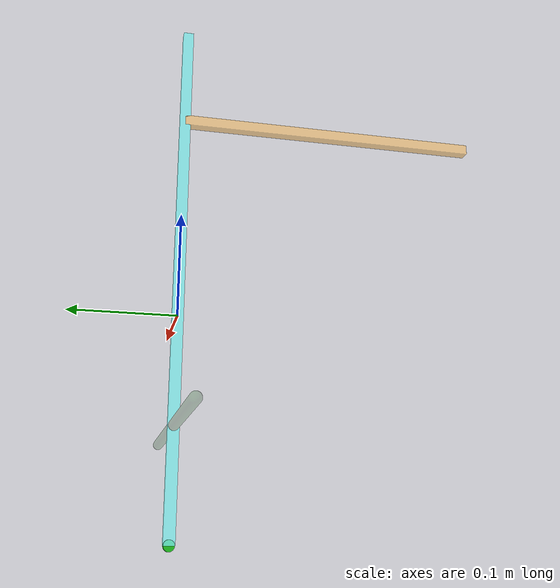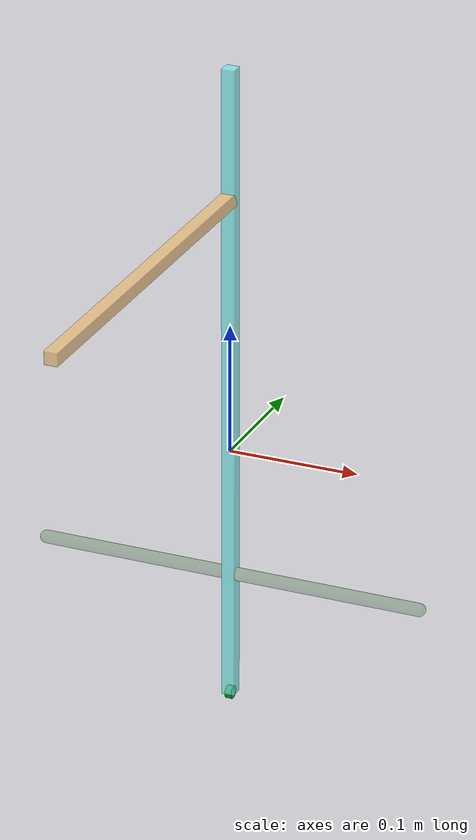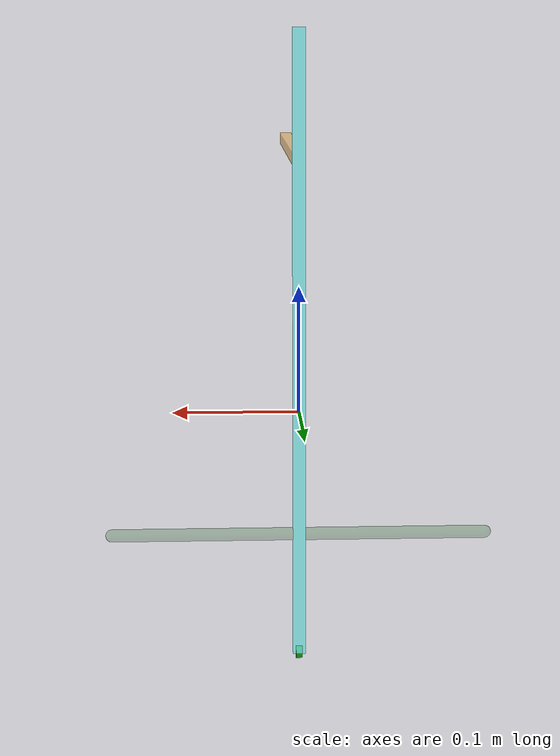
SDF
<?xml version="1.0" encoding="utf-8"?>
<sdf version="1.6" xmlns:drake="drake.mit.edu">
  <model name="Robot_Finger_Planar_Mechanism">
    <link name="base">
      <inertial>
        <mass>1.0</mass>
        <pose>0 0 0  0 0 0</pose>
        <inertia>
          <ixx>0.1</ixx>
          <ixy>0.0</ixy>
          <ixz>0.0</ixz>
          <iyy>0.1</iyy>
          <iyz>0.0</iyz>
          <izz>0.1</izz>
        </inertia>
      </inertial>
      <visual name="base_visual">
        <pose>0 0 -0.1  0 1.570796326794897 0</pose>
        <geometry>
          <capsule>
            <radius>0.005</radius>
            <length>0.300</length>  <!-- Along the z-axis -->
          </capsule>
        </geometry>
        <material>
          <diffuse>0.0 0.3 0.0 0.25</diffuse>
        </material>
      </visual>
    </link>
    <link name="zSlider_body">
      <pose relative_to="base">0 0 -0.2  0 0 0</pose>
      <inertial>
        <mass>0.1</mass>
        <pose>0 0 0  0 0 0</pose>
        <inertia>
          <ixx>1E-6</ixx>
          <ixy>0.0</ixy>
          <ixz>0.0</ixz>
          <iyy>1E-6</iyy>
          <iyz>0.0</iyz>
          <izz>1E-6</izz>
        </inertia>
      </inertial>
      <visual name="zSlider_body_visual">
        <pose>0 0 0  0 1.570796326794897 0</pose>
        <geometry>
          <cylinder>
            <radius>0.005</radius>
            <length>0.005</length>
          </cylinder>
        </geometry>
        <material>
          <diffuse>0.1 0.7 0.1 1</diffuse>
        </material>
      </visual>
    </link>
    <link name="rod_body">
      <pose relative_to="zSlider_body">0 0 0  0 0 0</pose>
      <inertial>
        <mass>0.1</mass>
        <pose>0 0 0.25  0 0 0</pose>
        <inertia>
          <ixx>1E-6</ixx>
          <ixy>0.0</ixy>
          <ixz>0.0</ixz>
          <iyy>1E-6</iyy>
          <iyz>0.0</iyz>
          <izz>1E-6</izz>
        </inertia>
      </inertial>
      <visual name="rod_body_visual">
        <pose>0 0 0.25  0 0 0</pose>
        <geometry>
          <box>
            <size>0.01  0.01  0.5</size>
          </box>
        </geometry>
        <material>
          <diffuse>0.5 1.0 1.0 0.75</diffuse>
        </material>
      </visual>
    </link>
    <link name="ySlider_body">
      <pose relative_to="base">0 0 0.2  0 0 0</pose>
      <inertial>
        <pose>0 -0.15 0  0 0 0</pose>
        <mass>0.1</mass>
        <inertia>
          <ixx>1E-6</ixx>
          <ixy>0.0</ixy>
          <ixz>0.0</ixz>
          <iyy>1E-6</iyy>
          <iyz>0.0</iyz>
          <izz>1E-6</izz>
        </inertia>
      </inertial>
      <visual name="ySlider_body_visual">
        <pose>0 -0.15 0  0 0 0</pose>
        <geometry>
          <box>
            <size>0.01 0.3 0.01</size>
          </box>
        </geometry>
        <material>
          <diffuse>1.0 0.8 0.5 0.75</diffuse>
        </material>
      </visual>
    </link>
    <joint name="zSlider_joint" type="prismatic">
      <child>zSlider_body</child>
      <parent>base</parent>
      <axis>
        <xyz>0 0 1</xyz>
        <limit>
          <lower>-1E9</lower>
          <upper>1E9</upper>
          <effort>0</effort>
        </limit>
      </axis>
    </joint>
    <joint name="ySlider_joint" type="prismatic">
      <child>ySlider_body</child>
      <parent>base</parent>
      <axis>
        <xyz>0 1 0</xyz>
        <limit>
          <lower>-1E9</lower>
          <upper>1E9</upper>
          <effort>1.0</effort>
        </limit>
      </axis>
    </joint>
    <joint name="rod_revolute_joint" type="revolute">
      <child>rod_body</child>
      <parent>zSlider_body</parent>
      <axis>
        <xyz>1 0 0</xyz>
        <limit>
          <effort>0</effort>
        </limit>
      </axis>
    </joint>
    <!-- *******************************************************
         A bushing attaches frameA on ySlider_body to frameC on rod_body.
         ******************************************************* -->
    <frame attached_to="ySlider_body" name="frameA">
      <pose relative_to="ySlider_body">0 -0.3 0  0 0 0</pose>
    </frame>
    <frame attached_to="rod_body" name="frameC">
      <pose relative_to="rod_body">0 0 0.5  0 0 0</pose>
    </frame>
    <drake:linear_bushing_rpy>
      <drake:bushing_frameA>frameA</drake:bushing_frameA>
      <drake:bushing_frameC>frameC</drake:bushing_frameC>
      <drake:bushing_torque_stiffness>0 0 0</drake:bushing_torque_stiffness>
      <drake:bushing_torque_damping>0 0 0</drake:bushing_torque_damping>
      <drake:bushing_force_stiffness>7000 7000 7000</drake:bushing_force_stiffness>
      <drake:bushing_force_damping>10.1 10.1 10.1</drake:bushing_force_damping>
    </drake:linear_bushing_rpy>
  </model>
</sdf>
